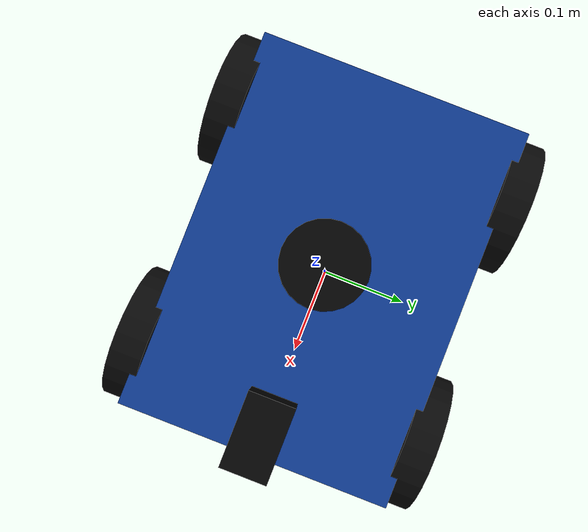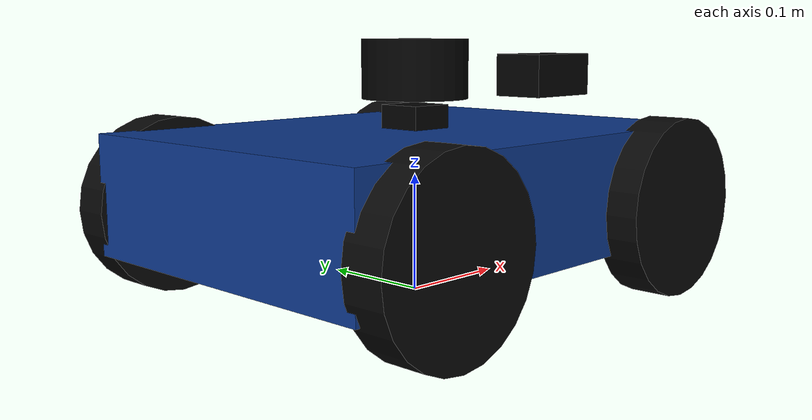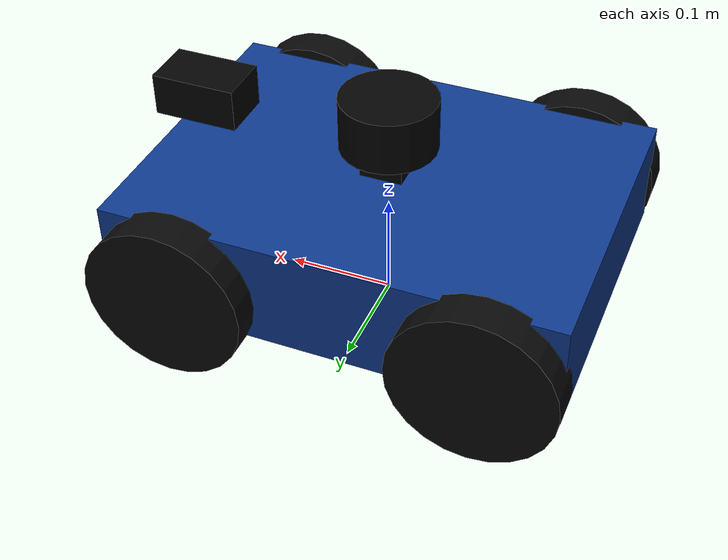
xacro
<?xml version="1.0"?>
<robot xmlns:xacro="http://www.ros.org/wiki/xacro" name="first_bot">
  <xacro:property name="L" value="0.42"/><xacro:property name="W" value="0.30"/><xacro:property name="H" value="0.10"/><xacro:property name="R" value="0.075"/><xacro:property name="WW" value="0.035"/><xacro:property name="X" value="0.14"/><xacro:property name="Y" value="0.16"/>
  <material name="blue"><color rgba="0.05 0.22 0.55 1"/></material><material name="rubber"><color rgba="0.03 0.03 0.03 1"/></material><material name="black"><color rgba="0.01 0.01 0.01 1"/></material>
  <link name="base_link"><visual><origin xyz="0 0 0.09"/><geometry><box size="${L} ${W} ${H}"/></geometry><material name="blue"/></visual><collision><origin xyz="0 0 0.09"/><geometry><box size="${L} ${W} ${H}"/></geometry></collision><inertial><origin xyz="0 0 0.09"/><mass value="2"/><inertia ixx="0.020" ixy="0" ixz="0" iyy="0.032" iyz="0" izz="0.045"/></inertial></link>
  <xacro:macro name="wheel" params="name x y"><link name="${name}_wheel"><visual><origin rpy="${pi/2} 0 0"/><geometry><cylinder radius="${R}" length="${WW}"/></geometry><material name="rubber"/></visual><collision><origin rpy="${pi/2} 0 0"/><geometry><cylinder radius="${R}" length="${WW}"/></geometry></collision><inertial><mass value="0.15"/><inertia ixx="0.0005" ixy="0" ixz="0" iyy="0.0005" iyz="0" izz="0.0005"/></inertial></link><joint name="${name}_wheel_joint" type="continuous"><parent link="base_link"/><child link="${name}_wheel"/><origin xyz="${x} ${y} ${R}"/><axis xyz="0 1 0"/></joint></xacro:macro>
  <xacro:wheel name="front_left" x="${X}" y="${Y}"/><xacro:wheel name="rear_left" x="-${X}" y="${Y}"/><xacro:wheel name="front_right" x="${X}" y="-${Y}"/><xacro:wheel name="rear_right" x="-${X}" y="-${Y}"/>
  <link name="lidar_link"><visual><geometry><cylinder radius="0.045" length="0.05"/></geometry><material name="black"/></visual><collision><geometry><cylinder radius="0.045" length="0.05"/></geometry></collision></link><joint name="lidar_joint" type="fixed"><parent link="base_link"/><child link="lidar_link"/><origin xyz="0 0 0.19"/></joint>
  <link name="camera_link"><visual><geometry><box size="0.08 0.05 0.04"/></geometry><material name="black"/></visual></link><joint name="camera_joint" type="fixed"><parent link="base_link"/><child link="camera_link"/><origin xyz="0.18 0 0.18"/></joint><link name="camera_optical_frame"/><joint name="camera_optical_joint" type="fixed"><parent link="camera_link"/><child link="camera_optical_frame"/><origin rpy="${-pi/2} 0 ${-pi/2}"/></joint>
  <link name="imu_link"><visual><geometry><box size="0.04 0.04 0.02"/></geometry><material name="black"/></visual></link><joint name="imu_joint" type="fixed"><parent link="base_link"/><child link="imu_link"/><origin xyz="0 0 0.15"/></joint>
  <gazebo reference="base_link"><mu1>0.8</mu1><mu2>0.8</mu2></gazebo>
  <gazebo reference="front_left_wheel"><mu1>1.2</mu1><mu2>1.2</mu2></gazebo><gazebo reference="rear_left_wheel"><mu1>1.2</mu1><mu2>1.2</mu2></gazebo><gazebo reference="front_right_wheel"><mu1>1.2</mu1><mu2>1.2</mu2></gazebo><gazebo reference="rear_right_wheel"><mu1>1.2</mu1><mu2>1.2</mu2></gazebo>
  <gazebo><plugin filename="gz-sim-diff-drive-system" name="gz::sim::systems::DiffDrive"><topic>/cmd_vel</topic><left_joint>front_left_wheel_joint</left_joint><left_joint>rear_left_wheel_joint</left_joint><right_joint>front_right_wheel_joint</right_joint><right_joint>rear_right_wheel_joint</right_joint><wheel_separation>0.32</wheel_separation><wheel_radius>0.075</wheel_radius><odom_publish_frequency>50</odom_publish_frequency><odom_topic>/odom</odom_topic><tf_topic>/tf</tf_topic><frame_id>odom</frame_id><child_frame_id>base_link</child_frame_id></plugin></gazebo>
  <gazebo reference="lidar_link"><sensor name="lidar" type="gpu_lidar"><update_rate>10</update_rate><topic>/scan</topic><frame_id>lidar_link</frame_id><lidar><scan><horizontal><samples>720</samples><resolution>1</resolution><min_angle>-3.14159</min_angle><max_angle>3.14159</max_angle></horizontal></scan><range><min>0.12</min><max>12.0</max><resolution>0.01</resolution></range></lidar></sensor></gazebo>
  <gazebo reference="camera_link"><sensor name="rgbd_camera" type="rgbd_camera"><update_rate>15</update_rate><topic>/camera</topic><camera><horizontal_fov>1.047</horizontal_fov><image><width>640</width><height>480</height><format>R8G8B8</format></image><clip><near>0.1</near><far>10</far></clip></camera></sensor></gazebo>
  <gazebo reference="imu_link"><sensor name="imu_sensor" type="imu"><always_on>true</always_on><update_rate>100</update_rate><topic>/imu/data</topic><frame_id>imu_link</frame_id></sensor></gazebo>
</robot>
